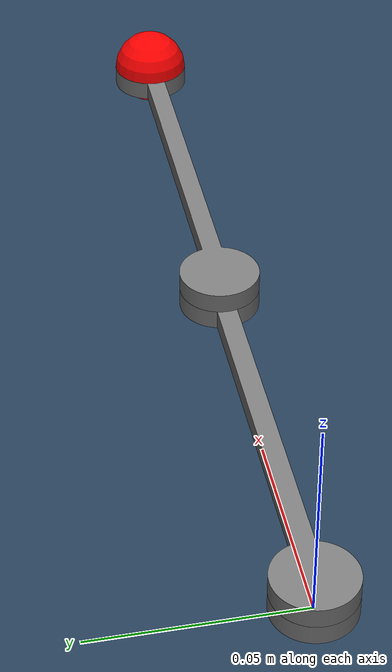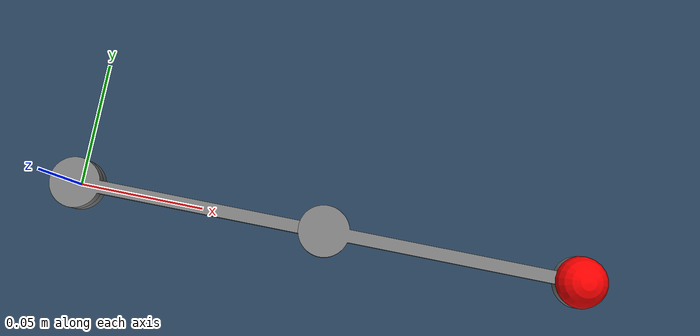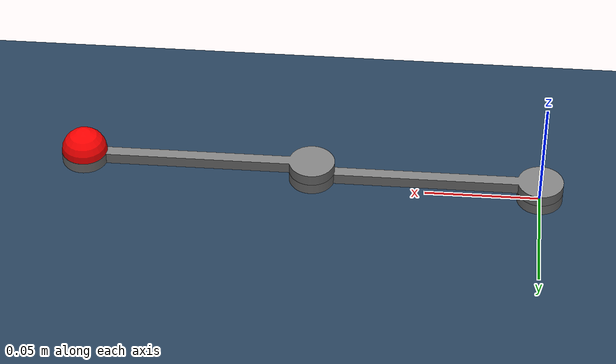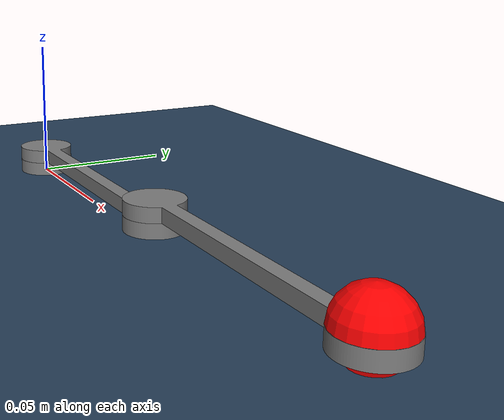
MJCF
<mujoco model="two_link">
    <compiler angle="radian"/>
    <default>
        <geom type="mesh" xyaxes="1 0 0 0 1 0"/>
    </default>

    <asset>
        <texture name="grid" type="2d" builtin="checker" rgb1=".1 .2 .3" rgb2=".2 .3 .4" width="300" height="300"/>
        <material name="grid" texture="grid" texrepeat="8 8" reflectance=".2"/>
        <mesh name="base" file="stl/base.stl" scale=".001 .001 .001"/>
        <mesh name="link1" file="stl/link1.stl" scale=".001 .001 .001"/>
        <mesh name="link2" file="stl/link2.stl" scale=".001 .001 .001"/>
    </asset>

    <worldbody>
        <geom name="floor" type="plane" pos="0 0 0" size="5 5 .1" material="grid"/>
        <light name="top" pos="0 0 .6" diffuse="1 1 1" specular=".5 .5 .5" attenuation=".1 .1 .1"/>

        <body name="base">
            <geom mesh="base"/>
            <body name="link1">
                <joint name="joint1" pos="0 0 .005" axis="0 0 1" range="-3.14 3.14" damping="1"/>
                <geom mesh="link1"/>
                <body name="link2">
                    <joint name="joint2" pos=".1 0 .01" axis="0 0 1" range="-3.14 3.14" damping="1"/>
                    <geom mesh="link2"/>
                    <site name="end_effector" pos=".2 0 .015" size=".01" rgba="1 0 0 1"/>
                </body>
            </body>
        </body>
    </worldbody>
<contact>
    <exclude body1="base" body2="link1"/>
    <exclude body1="link1" body2="link2"/>
</contact>

<actuator>
    <position name="joint1" joint="joint1" ctrllimited="true" ctrlrange="-3.14 3.14" kp="20" kv=".1"/>
    <position name="joint2" joint="joint2" ctrllimited="true" ctrlrange="-3.14 3.14" kp="20" kv=".1"/>
</actuator>

</mujoco>
